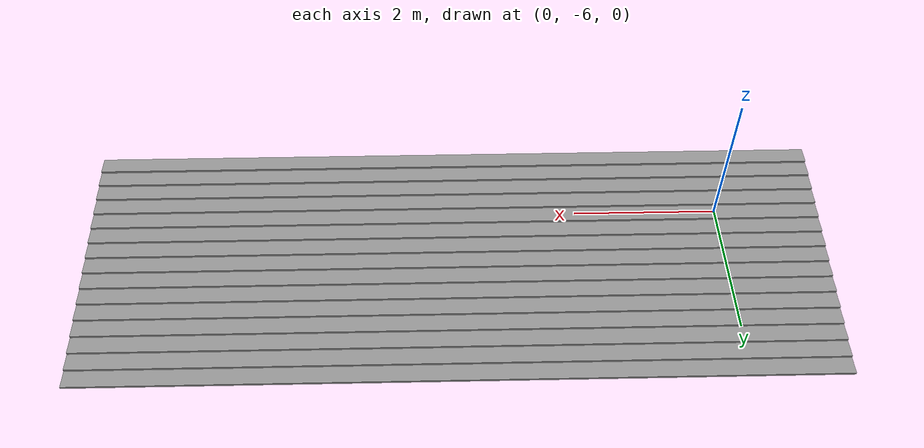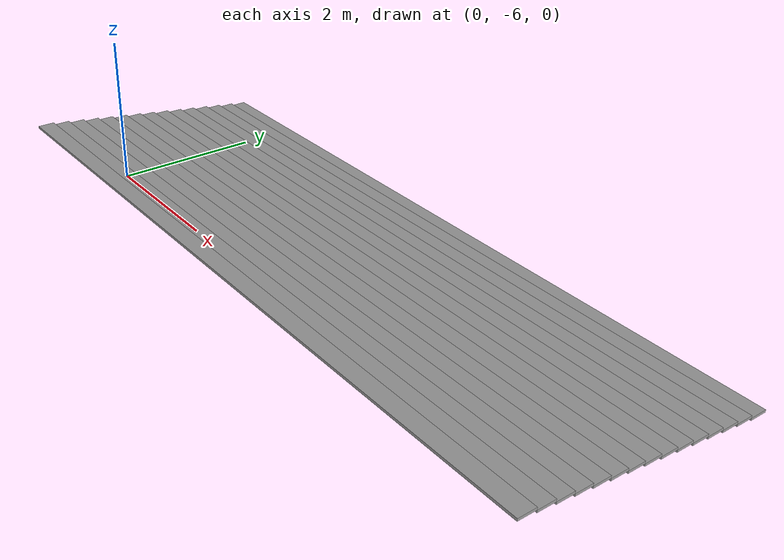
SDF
<?xml version='1.0'?>
<sdf version='1.7'>
  <model name='stair'>
    <pose>3.69 -3.36343 0 0 -0 0</pose>
    <link name='Stairs_0'>
      <visual name='Stairs_0_Visual_0'>
        <pose>-0 0.019898 0.016667 0 -0 0</pose>
        <geometry>
          <box>
            <size>10 0.233333 0.033333</size>
          </box>
        </geometry>
        <material>
          <script>
            <uri>file://media/materials/scripts/gazebo.material</uri>
            <name>Gazebo/Grey</name>
          </script>
          <ambient>1 1 1 1</ambient>
        </material>
        <meta>
          <layer>0</layer>
        </meta>
      </visual>
      <collision name='Stairs_0_Collision_0'>
        <geometry>
          <box>
            <size>10 0.233333 0.033333</size>
          </box>
        </geometry>
        <pose>-0 0.019898 0.016667 0 -0 0</pose>
      </collision>
      <visual name='Stairs_0_Visual_1'>
        <pose>-0 -0.213435 0.05 0 -0 0</pose>
        <geometry>
          <box>
            <size>10 0.233333 0.033333</size>
          </box>
        </geometry>
        <material>
          <script>
            <uri>file://media/materials/scripts/gazebo.material</uri>
            <name>Gazebo/Grey</name>
          </script>
          <ambient>1 1 1 1</ambient>
        </material>
        <meta>
          <layer>0</layer>
        </meta>
      </visual>
      <collision name='Stairs_0_Collision_1'>
        <geometry>
          <box>
            <size>10 0.233333 0.033333</size>
          </box>
        </geometry>
        <pose>-0 -0.213435 0.05 0 -0 0</pose>
      </collision>
      <visual name='Stairs_0_Visual_2'>
        <pose>-0 -0.446768 0.083333 0 -0 0</pose>
        <geometry>
          <box>
            <size>10 0.233333 0.033333</size>
          </box>
        </geometry>
        <material>
          <script>
            <uri>file://media/materials/scripts/gazebo.material</uri>
            <name>Gazebo/Grey</name>
          </script>
          <ambient>1 1 1 1</ambient>
        </material>
        <meta>
          <layer>0</layer>
        </meta>
      </visual>
      <collision name='Stairs_0_Collision_2'>
        <geometry>
          <box>
            <size>10 0.233333 0.033333</size>
          </box>
        </geometry>
        <pose>-0 -0.446768 0.083333 0 -0 0</pose>
      </collision>
      <visual name='Stairs_0_Visual_3'>
        <pose>-0 -0.680101 0.116667 0 -0 0</pose>
        <geometry>
          <box>
            <size>10 0.233333 0.033333</size>
          </box>
        </geometry>
        <material>
          <script>
            <uri>file://media/materials/scripts/gazebo.material</uri>
            <name>Gazebo/Grey</name>
          </script>
          <ambient>1 1 1 1</ambient>
        </material>
        <meta>
          <layer>0</layer>
        </meta>
      </visual>
      <collision name='Stairs_0_Collision_3'>
        <geometry>
          <box>
            <size>10 0.233333 0.033333</size>
          </box>
        </geometry>
        <pose>-0 -0.680101 0.116667 0 -0 0</pose>
      </collision>
      <visual name='Stairs_0_Visual_4'>
        <pose>-0 -0.913435 0.15 0 -0 0</pose>
        <geometry>
          <box>
            <size>10 0.233333 0.033333</size>
          </box>
        </geometry>
        <material>
          <script>
            <uri>file://media/materials/scripts/gazebo.material</uri>
            <name>Gazebo/Grey</name>
          </script>
          <ambient>1 1 1 1</ambient>
        </material>
        <meta>
          <layer>0</layer>
        </meta>
      </visual>
      <collision name='Stairs_0_Collision_4'>
        <geometry>
          <box>
            <size>10 0.233333 0.033333</size>
          </box>
        </geometry>
        <pose>-0 -0.913435 0.15 0 -0 0</pose>
      </collision>
      <visual name='Stairs_0_Visual_5'>
        <pose>-0 -1.14677 0.183333 0 -0 0</pose>
        <geometry>
          <box>
            <size>10 0.233333 0.033333</size>
          </box>
        </geometry>
        <material>
          <script>
            <uri>file://media/materials/scripts/gazebo.material</uri>
            <name>Gazebo/Grey</name>
          </script>
          <ambient>1 1 1 1</ambient>
        </material>
        <meta>
          <layer>0</layer>
        </meta>
      </visual>
      <collision name='Stairs_0_Collision_5'>
        <geometry>
          <box>
            <size>10 0.233333 0.033333</size>
          </box>
        </geometry>
        <pose>-0 -1.14677 0.183333 0 -0 0</pose>
      </collision>
      <visual name='Stairs_0_Visual_6'>
        <pose>-0 -1.3801 0.216667 0 -0 0</pose>
        <geometry>
          <box>
            <size>10 0.233333 0.033333</size>
          </box>
        </geometry>
        <material>
          <script>
            <uri>file://media/materials/scripts/gazebo.material</uri>
            <name>Gazebo/Grey</name>
          </script>
          <ambient>1 1 1 1</ambient>
        </material>
        <meta>
          <layer>0</layer>
        </meta>
      </visual>
      <collision name='Stairs_0_Collision_6'>
        <geometry>
          <box>
            <size>10 0.233333 0.033333</size>
          </box>
        </geometry>
        <pose>-0 -1.3801 0.216667 0 -0 0</pose>
      </collision>
      <visual name='Stairs_0_Visual_7'>
        <pose>-0 -1.61343 0.25 0 -0 0</pose>
        <geometry>
          <box>
            <size>10 0.233333 0.033333</size>
          </box>
        </geometry>
        <material>
          <script>
            <uri>file://media/materials/scripts/gazebo.material</uri>
            <name>Gazebo/Grey</name>
          </script>
          <ambient>1 1 1 1</ambient>
        </material>
        <meta>
          <layer>0</layer>
        </meta>
      </visual>
      <collision name='Stairs_0_Collision_7'>
        <geometry>
          <box>
            <size>10 0.233333 0.033333</size>
          </box>
        </geometry>
        <pose>-0 -1.61343 0.25 0 -0 0</pose>
      </collision>
      <visual name='Stairs_0_Visual_8'>
        <pose>-0 -1.84677 0.283333 0 -0 0</pose>
        <geometry>
          <box>
            <size>10 0.233333 0.033333</size>
          </box>
        </geometry>
        <material>
          <script>
            <uri>file://media/materials/scripts/gazebo.material</uri>
            <name>Gazebo/Grey</name>
          </script>
          <ambient>1 1 1 1</ambient>
        </material>
        <meta>
          <layer>0</layer>
        </meta>
      </visual>
      <collision name='Stairs_0_Collision_8'>
        <geometry>
          <box>
            <size>10 0.233333 0.033333</size>
          </box>
        </geometry>
        <pose>-0 -1.84677 0.283333 0 -0 0</pose>
      </collision>
      <visual name='Stairs_0_Visual_9'>
        <pose>-0 -2.0801 0.316667 0 -0 0</pose>
        <geometry>
          <box>
            <size>10 0.233333 0.033333</size>
          </box>
        </geometry>
        <material>
          <script>
            <uri>file://media/materials/scripts/gazebo.material</uri>
            <name>Gazebo/Grey</name>
          </script>
          <ambient>1 1 1 1</ambient>
        </material>
        <meta>
          <layer>0</layer>
        </meta>
      </visual>
      <collision name='Stairs_0_Collision_9'>
        <geometry>
          <box>
            <size>10 0.233333 0.033333</size>
          </box>
        </geometry>
        <pose>-0 -2.0801 0.316667 0 -0 0</pose>
      </collision>
      <visual name='Stairs_0_Visual_10'>
        <pose>-0 -2.31344 0.35 0 -0 0</pose>
        <geometry>
          <box>
            <size>10 0.233333 0.033333</size>
          </box>
        </geometry>
        <material>
          <script>
            <uri>file://media/materials/scripts/gazebo.material</uri>
            <name>Gazebo/Grey</name>
          </script>
          <ambient>1 1 1 1</ambient>
        </material>
        <meta>
          <layer>0</layer>
        </meta>
      </visual>
      <collision name='Stairs_0_Collision_10'>
        <geometry>
          <box>
            <size>10 0.233333 0.033333</size>
          </box>
        </geometry>
        <pose>-0 -2.31344 0.35 0 -0 0</pose>
      </collision>
      <visual name='Stairs_0_Visual_11'>
        <pose>-0 -2.54677 0.383333 0 -0 0</pose>
        <geometry>
          <box>
            <size>10 0.233333 0.033333</size>
          </box>
        </geometry>
        <material>
          <script>
            <uri>file://media/materials/scripts/gazebo.material</uri>
            <name>Gazebo/Grey</name>
          </script>
          <ambient>1 1 1 1</ambient>
        </material>
        <meta>
          <layer>0</layer>
        </meta>
      </visual>
      <collision name='Stairs_0_Collision_11'>
        <geometry>
          <box>
            <size>10 0.233333 0.033333</size>
          </box>
        </geometry>
        <pose>-0 -2.54677 0.383333 0 -0 0</pose>
      </collision>
      <visual name='Stairs_0_Visual_12'>
        <pose>-0 -2.7801 0.416667 0 -0 0</pose>
        <geometry>
          <box>
            <size>10 0.233333 0.033333</size>
          </box>
        </geometry>
        <material>
          <script>
            <uri>file://media/materials/scripts/gazebo.material</uri>
            <name>Gazebo/Grey</name>
          </script>
          <ambient>1 1 1 1</ambient>
        </material>
        <meta>
          <layer>0</layer>
        </meta>
      </visual>
      <collision name='Stairs_0_Collision_12'>
        <geometry>
          <box>
            <size>10 0.233333 0.033333</size>
          </box>
        </geometry>
        <pose>-0 -2.7801 0.416667 0 -0 0</pose>
      </collision>
      <visual name='Stairs_0_Visual_13'>
        <pose>-0 -3.01343 0.45 0 -0 0</pose>
        <geometry>
          <box>
            <size>10 0.233333 0.033333</size>
          </box>
        </geometry>
        <material>
          <script>
            <uri>file://media/materials/scripts/gazebo.material</uri>
            <name>Gazebo/Grey</name>
          </script>
          <ambient>1 1 1 1</ambient>
        </material>
        <meta>
          <layer>0</layer>
        </meta>
      </visual>
      <collision name='Stairs_0_Collision_13'>
        <geometry>
          <box>
            <size>10 0.233333 0.033333</size>
          </box>
        </geometry>
        <pose>-0 -3.01343 0.45 0 -0 0</pose>
      </collision>
      <visual name='Stairs_0_Visual_14'>
        <pose>-0 -3.24677 0.483333 0 -0 0</pose>
        <geometry>
          <box>
            <size>10 0.233333 0.033333</size>
          </box>
        </geometry>
        <material>
          <script>
            <uri>file://media/materials/scripts/gazebo.material</uri>
            <name>Gazebo/Grey</name>
          </script>
          <ambient>1 1 1 1</ambient>
        </material>
        <meta>
          <layer>0</layer>
        </meta>
      </visual>
      <collision name='Stairs_0_Collision_14'>
        <geometry>
          <box>
            <size>10 0.233333 0.033333</size>
          </box>
        </geometry>
        <pose>-0 -3.24677 0.483333 0 -0 0</pose>
      </collision>
    </link>
    <static>1</static>
  </model>
</sdf>
